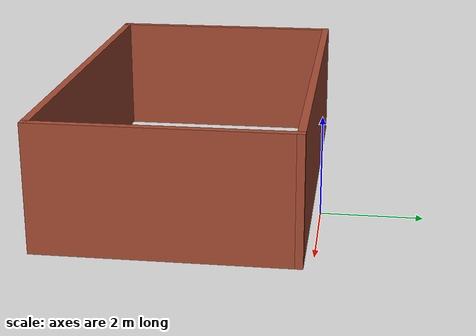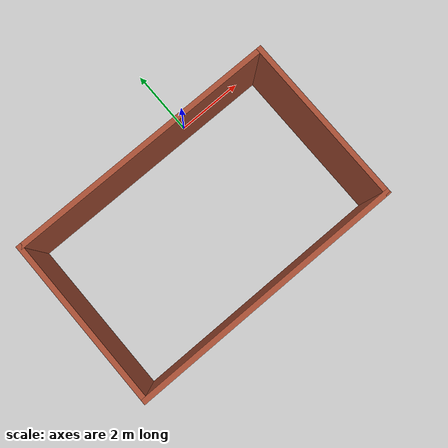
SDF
<?xml version='1.0'?>
<sdf version='1.5'>
  <model name='house_3c'>
    <pose frame=''>-1.46828 -2.66492 0 0 -0 0</pose>
    <link name='Wall_0'>
      <collision name='Wall_0_Collision'>
        <geometry>
          <box>
            <size>5 0.15 2.5</size>
          </box>
        </geometry>
        <pose frame=''>0 0 1.25 0 -0 0</pose>
      </collision>
      <visual name='Wall_0_Visual'>
        <pose frame=''>0 0 1.25 0 -0 0</pose>
        <geometry>
          <box>
            <size>5 0.15 2.5</size>
          </box>
        </geometry>
        <material>
          <script>
            <uri>file://media/materials/scripts/gazebo.material</uri>
            <name>Gazebo/Bricks</name>
          </script>
          <ambient>1 1 1 1</ambient>
        </material>
      </visual>
      <pose frame=''>-3.925 0 0 0 0 -1.5708</pose>
    </link>
    <link name='Wall_1'>
      <collision name='Wall_1_Collision'>
        <geometry>
          <box>
            <size>8 0.15 2.5</size>
          </box>
        </geometry>
        <pose frame=''>0 0 1.25 0 -0 0</pose>
      </collision>
      <visual name='Wall_1_Visual'>
        <pose frame=''>0 0 1.25 0 -0 0</pose>
        <geometry>
          <box>
            <size>8 0.15 2.5</size>
          </box>
        </geometry>
        <material>
          <script>
            <uri>file://media/materials/scripts/gazebo.material</uri>
            <name>Gazebo/Bricks</name>
          </script>
          <ambient>1 1 1 1</ambient>
        </material>
      </visual>
      <pose frame=''>0 -2.425 0 0 -0 0</pose>
    </link>
    <link name='Wall_2'>
      <collision name='Wall_2_Collision'>
        <geometry>
          <box>
            <size>5 0.15 2.5</size>
          </box>
        </geometry>
        <pose frame=''>0 0 1.25 0 -0 0</pose>
      </collision>
      <visual name='Wall_2_Visual'>
        <pose frame=''>0 0 1.25 0 -0 0</pose>
        <geometry>
          <box>
            <size>5 0.15 2.5</size>
          </box>
        </geometry>
        <material>
          <script>
            <uri>file://media/materials/scripts/gazebo.material</uri>
            <name>Gazebo/Bricks</name>
          </script>
          <ambient>1 1 1 1</ambient>
        </material>
      </visual>
      <pose frame=''>3.925 0 0 0 -0 1.5708</pose>
    </link>
    <link name='Wall_3'>
      <collision name='Wall_3_Collision'>
        <geometry>
          <box>
            <size>8 0.15 2.5</size>
          </box>
        </geometry>
        <pose frame=''>0 0 1.25 0 -0 0</pose>
      </collision>
      <visual name='Wall_3_Visual'>
        <pose frame=''>0 0 1.25 0 -0 0</pose>
        <geometry>
          <box>
            <size>8 0.15 2.5</size>
          </box>
        </geometry>
        <material>
          <script>
            <uri>file://media/materials/scripts/gazebo.material</uri>
            <name>Gazebo/Bricks</name>
          </script>
          <ambient>1 1 1 1</ambient>
        </material>
      </visual>
      <pose frame=''>0 2.425 0 0 -0 3.14159</pose>
    </link>
    <static>1</static>
  </model>
</sdf>
